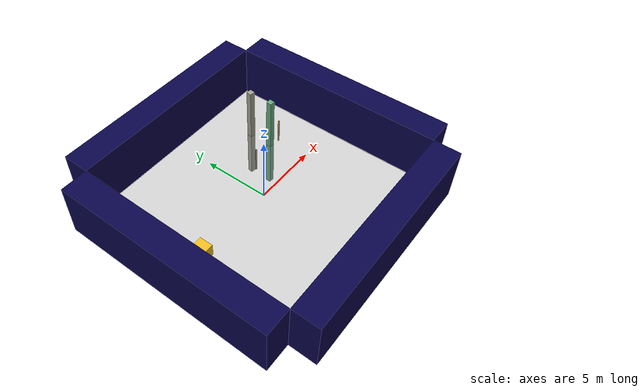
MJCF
<mujoco model="unnamed_model">
  <default>
    <default class="/" />
    <default class="border/" />
    <default class="border_1/" />
    <default class="border_2/" />
    <default class="border_3/" />
    <default class="light/" />
    <default class="agent/" />
    <default class="stone0/" />
    <default class="stone1/" />
    <default class="apple/" />
    <default class="apple_1/" />
  </default>
  <worldbody>
    <body name="border/">
      <body name="border/border" pos="0 9 2">
        <geom name="border/border_geom" class="border/" type="box" size="8.0 1.0 2.0" rgba="0.035 0.016 0.29 1.0" />
      </body>
    </body>
    <body name="border_1/">
      <body name="border_1/border" pos="0 -9 2">
        <geom name="border_1/border_geom" class="border_1/" type="box" size="8.0 1.0 2.0" rgba="0.035 0.016 0.29 1.0" />
      </body>
    </body>
    <body name="border_2/">
      <body name="border_2/border" pos="9 0 2">
        <geom name="border_2/border_geom" class="border_2/" type="box" size="1.0 8.0 2.0" rgba="0.035 0.016 0.29 1.0" />
      </body>
    </body>
    <body name="border_3/">
      <body name="border_3/border" pos="-9 0 2">
        <geom name="border_3/border_geom" class="border_3/" type="box" size="1.0 8.0 2.0" rgba="0.035 0.016 0.29 1.0" />
      </body>
    </body>
    <body name="light/">
      <body name="light/light" pos="0 0 15">
        <geom name="light/light_geom" class="light/" size="0.5" rgba="1.0 1.0 1.0 0.0" />
        <light name="light//unnamed_light_0" class="light/" />
      </body>
    </body>
    <body euler="0 0 270.80770155258443" name="agent/" pos="-6.4000000000000004 0 0.5">
      <joint name="agent/boxagent_freeJoint/" class="/" type="free" />
      <body name="agent/agent" pos="0 0 0" euler="0 0 0">
        <geom name="agent/boxagent_geom" class="agent/" type="box" size="0.5 0.5 0.5" rgba="0.949 0.7451 0.1333 1.0" euler="0 0 0" />
        <camera name="agent/boxagent_camera" class="agent/" fovy="90" pos="0 0 0.25" euler="-90 180 0" />
      </body>
    </body>
    <body name="stone0/">
      <body name="stone0/stone0" pos="4.27325 2.7629000000000001 0.10000000000000001" euler="0 0 -93.926028322026099">
        <geom name="stone0/stone_geom" class="stone0/" type="box" size="0.2 0.2 4.0" rgba="0.396078431372549 0.6705882352941176 0.48627450980392156 1.0" />
      </body>
    </body>
    <body name="stone1/">
      <body name="stone1/stone1" pos="2.3268500000000003 2.530899999999999 0.10000000000000001" euler="0 0 149.58494763440387">
        <geom name="stone1/stone_geom" class="stone1/" type="box" size="0.05 0.05 1.0" rgba="0.6470588235294118 0.6392156862745098 0.5686274509803921 1.0" />
      </body>
    </body>
    <body name="apple/">
      <body name="apple/apple" pos="4.2445500000000003 4.5262999999999991 0.10000000000000001" euler="0 0 170.01050927601733">
        <geom name="apple/apple_geom" class="apple/" type="box" size="0.2 0.2 4.0" rgba="0.6470588235294118 0.6392156862745098 0.5686274509803921 1.0" />
      </body>
    </body>
    <body name="apple_1/">
      <body name="apple_1/apple" pos="5.7279 3.0607000000000006 0.10000000000000001" euler="0 0 7.513227460510393">
        <geom name="apple_1/apple_geom" class="apple_1/" type="box" size="0.05 0.05 1.0" rgba="0.6980392156862745 0.6 0.43137254901960786 1.0" />
      </body>
    </body>
    <geom name="base_plane" class="/" type="plane" size="8 8 0.10000000000000001" />
  </worldbody>
</mujoco>
